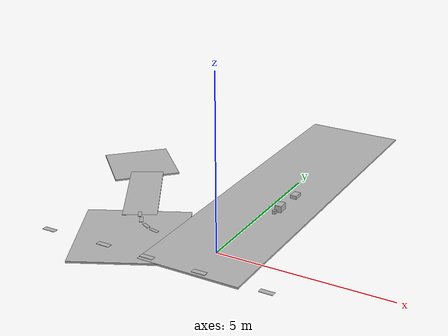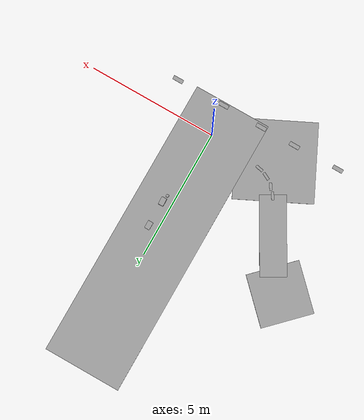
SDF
<sdf version="1.6">
 <world name="default">
  <model name="start_w400_black">
   <static>1</static>
   <link name="link">
    <collision name="collision">
     <geometry><box><size>11 3 0.05</size></box></geometry>
     <surface><friction><ode><mu>100</mu><mu2>50</mu2></ode></friction></surface>
    </collision>
    <visual name="visual">
     <cast_shadows>0</cast_shadows>
     <geometry><box><size>11 3 0.05</size></box></geometry>
     <material>
      <script>
       <uri>model://start_w400_black/materials/scripts</uri>
       <uri>model://start_w400_black/materials/textures/</uri>
       <name>start_w400_black/Image</name>
      </script>
     </material>
    </visual>
   </link>
   <pose>-0.131172 4.20277 0 0 -0 1.57079</pose>
  </model>
  <model name="left_curve_r100_a75_025">
   <static>1</static>
   <link name="link">
    <collision name="collision">
     <geometry><box><size>2 2 0.05</size></box></geometry>
     <surface><friction><ode><mu>100</mu><mu2>50</mu2></ode></friction></surface>
    </collision>
    <visual name="visual">
     <cast_shadows>0</cast_shadows>
     <geometry><box><size>2 2 0.05</size></box></geometry>
     <material>
      <script>
       <uri>model://left_curve_r100_a75_025/materials/scripts</uri>
       <uri>model://left_curve_r100_a75_025/materials/textures/</uri>
       <name>left_curve_r100_a75_025/Image</name>
      </script>
     </material>
    </visual>
   </link>
   <pose>-4.99373 3.81358 0 0 0 -0.782313</pose>
  </model>
  <model name="straight_300_o_25_1">
   <static>1</static>
   <link name="link">
    <collision name="collision">
     <geometry><box><size>3 1 0.05</size></box></geometry>
     <surface><friction><ode><mu>100</mu><mu2>50</mu2></ode></friction></surface>
    </collision>
    <visual name="visual">
     <cast_shadows>0</cast_shadows>
     <geometry><box><size>3 1 0.05</size></box></geometry>
     <material>
      <script>
       <uri>model://straight_300_o_25/materials/scripts</uri>
       <uri>model://straight_300_o_25/materials/textures/</uri>
       <name>straight_300_o_25/Image</name>
      </script>
     </material>
    </visual>
   </link>
   <pose>-3.7385 2.09443 0.00145 0 -0 2.0927</pose>
  </model>
  <model name="right_curve_r150_a90_o30_1">
   <static>1</static>
   <link name="link">
    <collision name="collision">
     <geometry><box><size>3 3 0.05</size></box></geometry>
     <surface><friction><ode><mu>100</mu><mu2>50</mu2></ode></friction></surface>
    </collision>
    <visual name="visual">
     <cast_shadows>0</cast_shadows>
     <geometry><box><size>3 3 0.05</size></box></geometry>
     <material>
      <script>
       <uri>model://right_curve_r150_a90_o30/materials/scripts</uri>
       <uri>model://right_curve_r150_a90_o30/materials/textures/</uri>
       <name>right_curve_r150_a90_o30/Image</name>
      </script>
     </material>
    </visual>
   </link>
   <pose>-2.46675 -0.335688 -0.002037 0 -0 0.452633</pose>
  </model>
  <model name="line_remove">
   <static>1</static>
   <link name="link">
    <collision name="collision">
     <geometry><box><size>0.1 0.3 0.01</size></box></geometry>
     <surface><friction><ode><mu>100</mu><mu2>50</mu2></ode></friction></surface>
    </collision>
    <visual name="visual">
     <cast_shadows>0</cast_shadows>
     <geometry><box><size>0.1 0.3 0.01</size></box></geometry>
     <material>
      <script>
       <uri>model://line_remove/materials/scripts</uri>
       <uri>model://line_remove/materials/textures/</uri>
       <name>line_remove/Image</name>
      </script>
     </material>
    </visual>
   </link>
   <pose>-3.01231 0.839662 0.02481 0 -0 0.569907</pose>
  </model>
  <model name="line_remove_0">
   <static>1</static>
   <link name="link">
    <collision name="collision">
     <geometry><box><size>0.1 0.3 0.01</size></box></geometry>
     <surface><friction><ode><mu>100</mu><mu2>50</mu2></ode></friction></surface>
    </collision>
    <visual name="visual">
     <cast_shadows>0</cast_shadows>
     <geometry><box><size>0.1 0.3 0.01</size></box></geometry>
     <material>
      <script>
       <uri>model://line_remove/materials/scripts</uri>
       <uri>model://line_remove/materials/textures/</uri>
       <name>line_remove/Image</name>
      </script>
     </material>
    </visual>
   </link>
   <pose>-2.78276 0.575236 0.02481 0 -0 0.569907</pose>
  </model>
  <model name="line_remove_1">
   <static>1</static>
   <link name="link">
    <collision name="collision">
     <geometry><box><size>0.1 0.3 0.01</size></box></geometry>
     <surface><friction><ode><mu>100</mu><mu2>50</mu2></ode></friction></surface>
    </collision>
    <visual name="visual">
     <cast_shadows>0</cast_shadows>
     <geometry><box><size>0.1 0.3 0.01</size></box></geometry>
     <material>
      <script>
       <uri>model://line_remove/materials/scripts</uri>
       <uri>model://line_remove/materials/textures/</uri>
       <name>line_remove/Image</name>
      </script>
     </material>
    </visual>
   </link>
   <pose>-2.453 0.333235 0.02481 0 -0 1.10056</pose>
  </model>
  <model name="line_remove_2">
   <static>1</static>
   <link name="link">
    <collision name="collision">
     <geometry><box><size>0.1 0.3 0.01</size></box></geometry>
     <surface><friction><ode><mu>100</mu><mu2>50</mu2></ode></friction></surface>
    </collision>
    <visual name="visual">
     <cast_shadows>0</cast_shadows>
     <geometry><box><size>0.1 0.3 0.01</size></box></geometry>
     <material>
      <script>
       <uri>model://line_remove/materials/scripts</uri>
       <uri>model://line_remove/materials/textures/</uri>
       <name>line_remove/Image</name>
      </script>
     </material>
    </visual>
   </link>
   <pose>-2.0977 0.201126 0.02481 0 -0 1.37064</pose>
  </model>
  <model name="box_l300_w200_h100">
   <static>1</static>
   <link name="link">
    <collision name="collision">
     <geometry><box><size>0.3 0.2 0.1</size></box></geometry>
     <surface><friction><ode><mu>100</mu><mu2>50</mu2></ode></friction></surface>
    </collision>
    <visual name="visual">
     <cast_shadows>0</cast_shadows>
     <geometry><box><size>0.3 0.2 0.1</size></box></geometry>
     <material>
      <script>
       <uri>model://box_l300_w200_h100/materials/scripts</uri>
       <uri>model://box_l300_w200_h100/materials/textures/</uri>
       <name>box_l300_w200_h100/Image</name>
      </script>
     </material>
    </visual>
   </link>
   <pose>0.363411 3.99878 0.081388 0 0 -1.58717</pose>
  </model>
  <model name="box_l300_w200_h200_0">
   <static>1</static>
   <link name="link">
    <collision name="collision">
     <geometry><box><size>0.3 0.2 0.2</size></box></geometry>
     <surface><friction><ode><mu>100</mu><mu2>50</mu2></ode></friction></surface>
    </collision>
    <visual name="visual">
     <cast_shadows>0</cast_shadows>
     <geometry><box><size>0.3 0.2 0.2</size></box></geometry>
     <material>
      <script>
       <uri>model://box_l300_w200_h200/materials/scripts</uri>
       <uri>model://box_l300_w200_h200/materials/textures/</uri>
       <name>box_l300_w200_h200/Image</name>
      </script>
     </material>
    </visual>
   </link>
   <pose>0.356802 3.00783 0.125381 0 0 -1.54544</pose>
  </model>
  <model name="box_l100_w100_h100">
   <static>1</static>
   <link name="link">
    <collision name="collision">
     <geometry><box><size>0.1 0.1 0.1</size></box></geometry>
     <surface><friction><ode><mu>100</mu><mu2>50</mu2></ode></friction></surface>
    </collision>
    <visual name="visual">
     <cast_shadows>0</cast_shadows>
     <geometry><box><size>0.1 0.1 0.1</size></box></geometry>
     <material>
      <script>
       <uri>model://box_l100_w100_h100/materials/scripts</uri>
       <uri>model://box_l100_w100_h100/materials/textures/</uri>
       <name>box_l100_w100_h100/Image</name>
      </script>
     </material>
    </visual>
   </link>
   <pose>0.308023 2.73902 0.076454 0 -0 0</pose>
  </model>
  <model name="speed_limit_10_ground">
   <static>1</static>
   <link name="link">
    <collision name="collision">
     <geometry><box><size>0.4 0.15 0.01</size></box></geometry>
     <surface><friction><ode><mu>100</mu><mu2>50</mu2></ode></friction></surface>
    </collision>
    <visual name="visual">
     <cast_shadows>0</cast_shadows>
     <geometry><box><size>0.4 0.15 0.01</size></box></geometry>
     <material>
      <script>
       <uri>model://speed_limit_10_ground/materials/scripts</uri>
       <uri>model://speed_limit_10_ground/materials/textures/</uri>
       <name>speed_limit_10_ground/Image</name>
      </script>
     </material>
    </visual>
   </link>
   <pose>2.09972 -1.17075 0.048709 0 -0 3.1402</pose>
  </model>
  <model name="speed_limit_20_ground_0">
   <static>1</static>
   <link name="link">
    <collision name="collision">
     <geometry><box><size>0.4 0.15 0.01</size></box></geometry>
     <surface><friction><ode><mu>100</mu><mu2>50</mu2></ode></friction></surface>
    </collision>
    <visual name="visual">
     <cast_shadows>0</cast_shadows>
     <geometry><box><size>0.4 0.15 0.01</size></box></geometry>
     <material>
      <script>
       <uri>model://speed_limit_20_ground/materials/scripts</uri>
       <uri>model://speed_limit_20_ground/materials/textures/</uri>
       <name>speed_limit_20_ground/Image</name>
      </script>
     </material>
    </visual>
   </link>
   <pose>0.18529 -1.17422 0.059205 0 0 -3.13419</pose>
  </model>
  <model name="speed_limit_30_ground">
   <static>1</static>
   <link name="link">
    <collision name="collision">
     <geometry><box><size>0.4 0.15 0.01</size></box></geometry>
     <surface><friction><ode><mu>100</mu><mu2>50</mu2></ode></friction></surface>
    </collision>
    <visual name="visual">
     <cast_shadows>0</cast_shadows>
     <geometry><box><size>0.4 0.15 0.01</size></box></geometry>
     <material>
      <script>
       <uri>model://speed_limit_30_ground/materials/scripts</uri>
       <uri>model://speed_limit_30_ground/materials/textures/</uri>
       <name>speed_limit_30_ground/Image</name>
      </script>
     </material>
    </visual>
   </link>
   <pose>-1.41085 -1.15 0.050675 0 -0 3.13711</pose>
  </model>
  <model name="speed_limit_40_ground">
   <static>1</static>
   <link name="link">
    <collision name="collision">
     <geometry><box><size>0.4 0.15 0.01</size></box></geometry>
     <surface><friction><ode><mu>100</mu><mu2>50</mu2></ode></friction></surface>
    </collision>
    <visual name="visual">
     <cast_shadows>0</cast_shadows>
     <geometry><box><size>0.4 0.15 0.01</size></box></geometry>
     <material>
      <script>
       <uri>model://speed_limit_40_ground/materials/scripts</uri>
       <uri>model://speed_limit_40_ground/materials/textures/</uri>
       <name>speed_limit_40_ground/Image</name>
      </script>
     </material>
    </visual>
   </link>
   <pose>-2.7963 -1.15658 0.05268 0 -0 3.1324</pose>
  </model>
  <model name="speed_limit_50_ground">
   <static>1</static>
   <link name="link">
    <collision name="collision">
     <geometry><box><size>0.4 0.15 0.01</size></box></geometry>
     <surface><friction><ode><mu>100</mu><mu2>50</mu2></ode></friction></surface>
    </collision>
    <visual name="visual">
     <cast_shadows>0</cast_shadows>
     <geometry><box><size>0.4 0.15 0.01</size></box></geometry>
     <material>
      <script>
       <uri>model://speed_limit_50_ground/materials/scripts</uri>
       <uri>model://speed_limit_50_ground/materials/textures/</uri>
       <name>speed_limit_50_ground/Image</name>
      </script>
     </material>
    </visual>
   </link>
   <pose>-4.59491 -1.19018 0.050885 0 -0 3.13768</pose>
  </model>
 </world>
</sdf>
